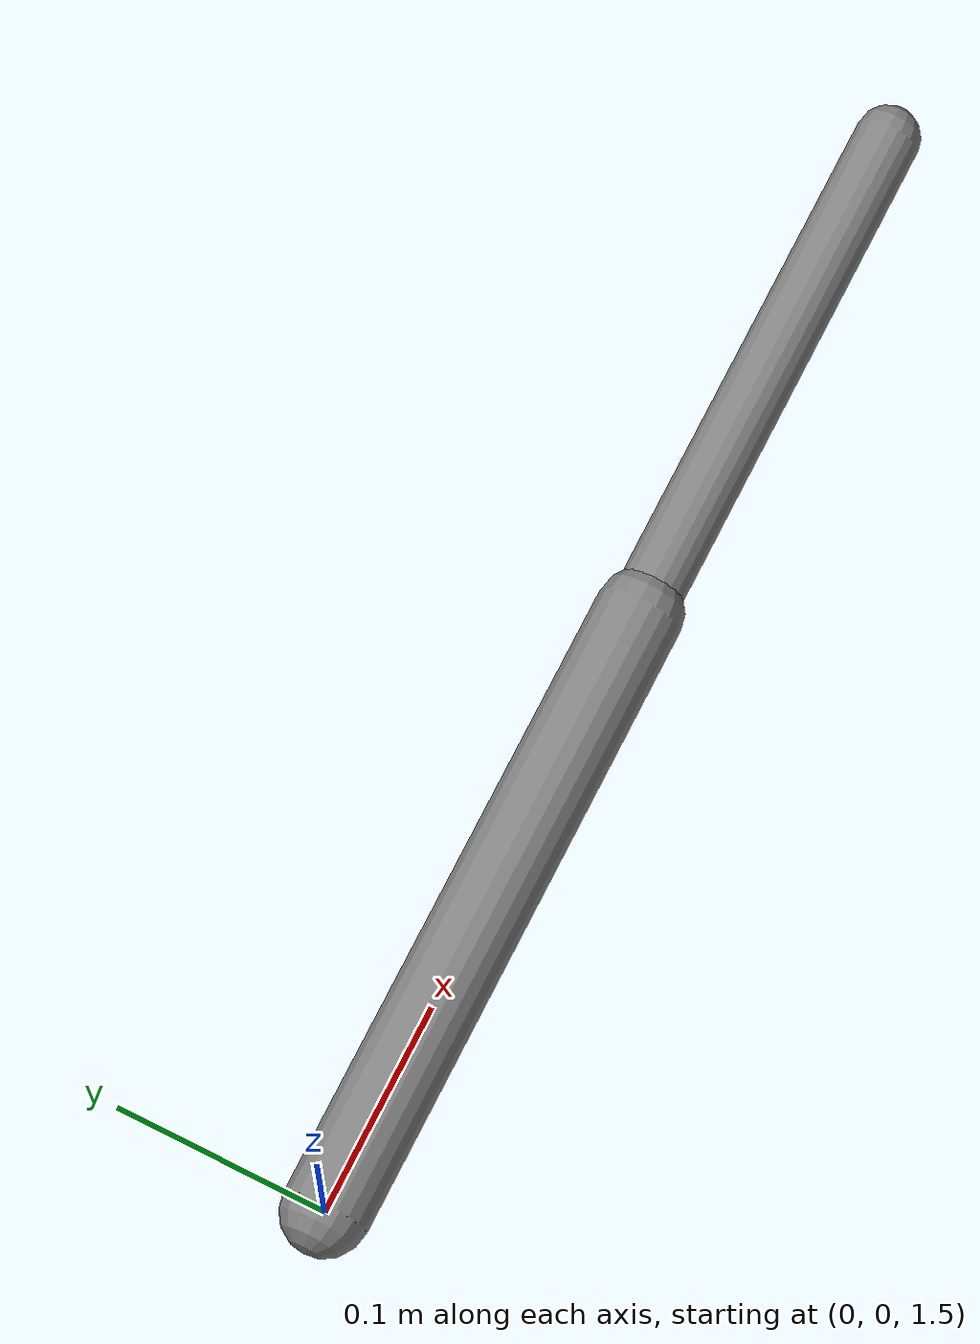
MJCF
<mujoco model="sensor_model">
  <option gravity="0 0 -9.81" timestep="0.002"/>
  <worldbody>
    <body name="upper" pos="0 0 1.5">
      <joint name="joint1" type="hinge" axis="0 1 0"
             stiffness="5" springref="0.2" damping="0.3"/>
      <geom name="upper_geom" type="capsule" fromto="0 0 0 0.3 0 0"
            size="0.02" mass="1.0"/>

      <body name="lower" pos="0.3 0 0">
        <joint name="joint2" type="hinge" axis="0 1 0"
               damping="0.2"/>
        <geom name="lower_geom" type="capsule" fromto="0 0 0 0.25 0 0"
              size="0.015" mass="0.5"/>
        <site name="tip" pos="0.25 0 0"/>
      </body>
    </body>
  </worldbody>

  <sensor>
    <jointpos name="joint1_pos" joint="joint1"/>
    <jointvel name="joint1_vel" joint="joint1"/>
    <framepos name="tip_pos" objtype="site" objname="tip"/>
    <framequat name="tip_quat" objtype="site" objname="tip"/>
    <framelinvel name="tip_linvel" objtype="site" objname="tip"/>
    <subtreecom name="upper_com" body="upper"/>
    <accelerometer name="tip_acc" site="tip"/>
    <gyro name="tip_gyro" site="tip"/>
  </sensor>
</mujoco>
